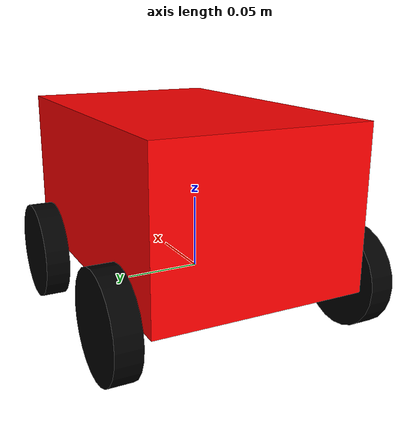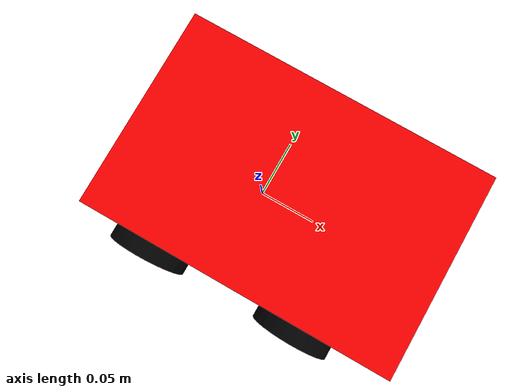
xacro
<?xml version="1.0"?>
<robot xmlns:xacro="http://www.ros.org/wiki/xacro"  name="robot">
    <xacro:include filename="inertial_macros.xacro"/>
    <material name="blue">
        <color rgba="0 0 1 1"/>
    </material>
    <material name="red">
        <color rgba="1 0 0 1"/>
    </material>
    <material name="green">
        <color rgba="0 1 0 1"/>
    </material>
    <material name="black">
        <color rgba="0 0 0 1"/>
    </material>
    <material name="white">
        <color rgba="1 1 1 1"/>
    </material>
    <link name="base_link">
    </link>
    <joint name="chassis_joint" type="fixed">
        <parent link="base_link"/>
        <child link="chassis"/>
        <origin xyz="-0.09 0 0"/>
    </joint>
    <link name="chassis">
        <visual>
            <origin xyz="0.1125 0 0.055"/>
            <geometry>
                <box size="0.225 0.145 0.11"/>
            </geometry>
            <material name="red"/>
        </visual>
        <xacro:inertial_box mass="0.5" x="0.225" y="0.145" z="0.11">
            <origin xyz="0.1125 0 0.055"/>
        </xacro:inertial_box>
        <collision>
            <origin xyz="0.1125 0 0.055"/>
            <geometry>
                <box size="0.225 0.215 0.11"/>
            </geometry>
        </collision>
    </link>
    <gazebo reference="chassis">
            <material>Gazebo/White</material>
    </gazebo>
    <joint name="left_wheel_joint" type="continuous">
        <parent link="base_link"/>
        <child link="left_wheel"/>
        <origin xyz="0.08 0.087 0" rpy="-${pi/2} 0 0"/>
        <axis xyz="0 0 1"/>
    </joint>
    <link name="left_wheel">
        <visual>
            <geometry>
                <cylinder radius="0.035" length="0.017"/>
            </geometry>
            <material name="black"/>
        </visual>
        <collision>
            <geometry>
                <cylinder radius="0.035" length="0.017"/>
            </geometry>
        </collision>
        <xacro:inertial_cylinder mass="0.1" length="0.017" radius="0.035">
            <origin xyz="0 0 0" rpy="0 0 0"/>
        </xacro:inertial_cylinder>
    </link>
     <gazebo reference="left_wheel">
            <material>Gazebo/Black</material>
    </gazebo>
    <joint name="right_wheel_joint" type="continuous">
        <parent link="base_link"/>
        <child link="right_wheel"/>
        <origin xyz="0.08 -0.087 0" rpy="${pi/2} 0 0"/>
        <axis xyz="0 0 -1"/>
    </joint>
    <link name="right_wheel">
        <visual>
            <geometry>
                <cylinder radius="0.035" length="0.017"/>
            </geometry>
            <material name="black"/>
        </visual>
        <collision>
            <geometry>
                <cylinder radius="0.035" length="0.017"/>
            </geometry>
        </collision>
        <xacro:inertial_cylinder mass="0.1" length="0.017" radius="0.035">
            <origin xyz="0 0 0" rpy="0 0 0"/>
        </xacro:inertial_cylinder>
    </link>
     <gazebo reference="right_wheel">
            <material>Gazebo/Black</material>
    </gazebo>
    <joint name="left_wheel_joint_b" type="continuous">
        <parent link="base_link"/>
        <child link="left_wheel_b"/>
        <origin xyz="-0.06 0.087 0" rpy="-${pi/2} 0 0"/>
        <axis xyz="0 0 1"/>
    </joint>
    <link name="left_wheel_b">
        <visual>
            <geometry>
                <cylinder radius="0.035" length="0.017"/>
            </geometry>
            <material name="black"/>
        </visual>
        <collision>
            <geometry>
                <cylinder radius="0.035" length="0.017"/>
            </geometry>
        </collision>
        <xacro:inertial_cylinder mass="0.1" length="0.017" radius="0.035">
            <origin xyz="0 0 0" rpy="0 0 0"/>
        </xacro:inertial_cylinder>
    </link>
     <gazebo reference="left_wheel_b">
            <material>Gazebo/Black</material>
    </gazebo>
    <joint name="right_wheel_joint_b" type="continuous">
        <parent link="base_link"/>
        <child link="right_wheel_b"/>
        <origin xyz="-0.06 -0.087 0" rpy="${pi/2} 0 0"/>
        <axis xyz="0 0 -1"/>
    </joint>
    <link name="right_wheel_b">
        <visual>
            <geometry>
                <cylinder radius="0.035" length="0.017"/>
            </geometry>
            <material name="black"/>
        </visual>
        <collision>
            <geometry>
                <cylinder radius="0.035" length="0.017"/>
            </geometry>
        </collision>
        <xacro:inertial_cylinder mass="0.1" length="0.017" radius="0.035">
            <origin xyz="0 0 0" rpy="0 0 0"/>
        </xacro:inertial_cylinder>
    </link>
     <gazebo reference="right_wheel_b">
            <material>Gazebo/Black</material>
    </gazebo>
</robot>
